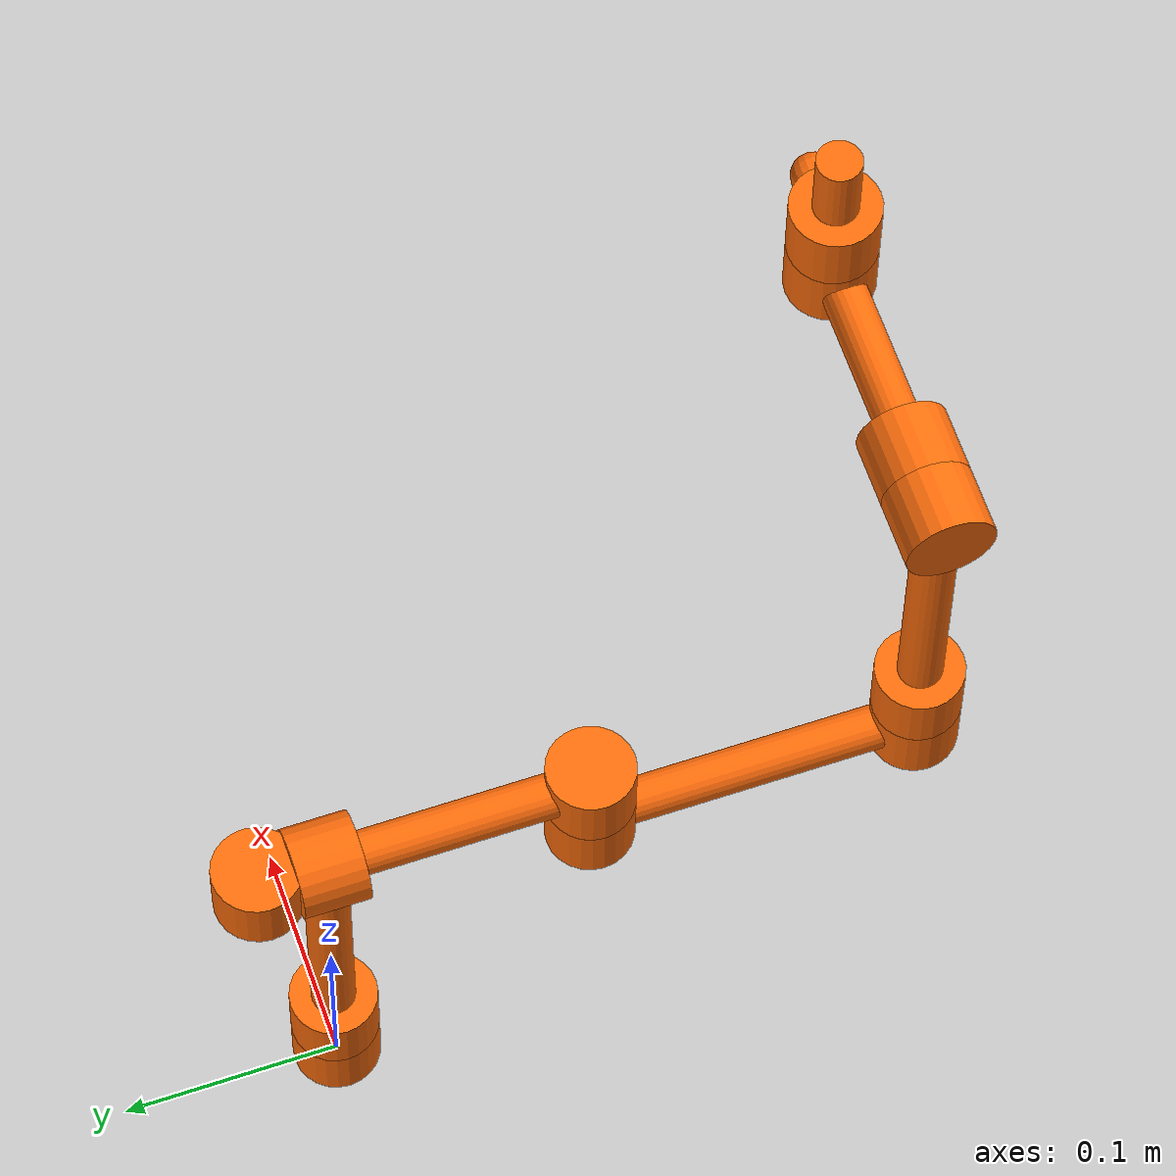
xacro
<?xml version="1.0"?>
<robot name="robot" xmlns:xacro="http://ros.org/wiki/xacro">

        <!-- joint properties -->
        <xacro:property name="joint_radius" value="0.02" />
        <xacro:property name="joint_length" value="0.03" />

        <!-- link properties -->
        <xacro:property name="link_radius" value="0.01" />
        <xacro:property name="link1_length" value="0.15" />
        <xacro:property name="link2_length" value="0.15" />
        <xacro:property name="link3_length" value="0.15" />
        <xacro:property name="link4_length" value="0.15" />
        <xacro:property name="link5_length" value="0.10" />
        <xacro:property name="link6_length" value="0.05" />

        <xacro:property name="inertia_radius" value="0.05" />
        <xacro:property name="inertia_length" value="0.3" />
        <xacro:property name="link_mass" value="1.0" />

        <!-- colors -->
        <material name="Orange">
                <color rgba="1.0 0.423529411765 0.0392156862745 1.0"/>
        </material>

        <!--    Macro Source: https://github.com/ros-industrial/universal_robot/
                Author: Ludovic Delval
                Contributor: Felix Messmer      -->
        <xacro:macro name="cylinder_inertial" params="radius length mass *origin">
                <inertial>
                        <mass value="${mass}" />
                        <xacro:insert_block name="origin" />
                        <inertia ixx="${0.0833333 * mass * (3 * radius * radius + length * length)}" ixy="0.0" ixz="0.0"
                                iyy="${0.0833333 * mass * (3 * radius * radius + length * length)}" iyz="0.0"
                                izz="${0.5 * mass * radius * radius}" />
                </inertial>
        </xacro:macro>

        <!-- Connect to world -->
        <link name="world" />
        <joint name="world_joint" type="fixed">
                <parent link="world" />
                <child link = "base_link" />
                <origin xyz="0.0 0.0 0.0" rpy="0.0 0.0 0.0" />
        </joint>

        <link name="base_link" >
                <visual name="joint">
                        <origin xyz="0 0 ${joint_length / 2.0}" rpy="0 0 0" />
                        <geometry>
                                <cylinder length="${joint_length}" radius="${joint_radius}"/>
                        </geometry>
                        <material name="Orange"/>
                </visual>
                <xacro:cylinder_inertial radius="${inertia_radius}" length="${inertia_length}" mass="${link_mass}">
                        <origin xyz="0 0 0" rpy="0 0 0" />
                </xacro:cylinder_inertial>
        </link>

        <joint name="joint1" type="revolute">
                <parent link="base_link" />
                <child link = "link1" />
                <origin xyz="0.0 0.0 ${3.0 / 2.0 * joint_length}" rpy="0.0 0.0 0.0" />
                <axis xyz="0 0 1" />
                <limit lower="${-2.0 * pi}" upper="${2.0 * pi}" effort="2.0" velocity="10.0"/>
                <dynamics D="1" K="7000" damping="0.003" friction="0.0" mu_coulomb="0" mu_viscous="16" />
        </joint>

        <link name="link1">
                <visual name="joint1">
                        <origin xyz="0 0 0" rpy="0 0 0" />
                        <geometry>
                                <cylinder length="${joint_length}" radius="${joint_radius}"/>
                        </geometry>
                        <material name="Orange"/>
                </visual>
                <visual name="link">
                        <origin xyz="0 0 ${link1_length / 2.0}" rpy="0 0 0" />
                        <geometry>
                                <cylinder length="${link1_length}" radius="${link_radius}"/>
                        </geometry>
                        <material name="Orange"/>
                </visual>
                <visual name="joint2">
                        <origin xyz="0 0 ${link1_length}" rpy="${pi / 2.0} 0 0" />
                        <geometry>
                                <cylinder length="${joint_length}" radius="${joint_radius}"/>
                        </geometry>
                        <material name="Orange"/>
                </visual>
                <xacro:cylinder_inertial radius="${inertia_radius}" length="${inertia_length}" mass="${link_mass}">
                        <origin xyz="0 0 ${link1_length / 2.0}" rpy="0 0 0" />
                </xacro:cylinder_inertial>
        </link>

        <joint name="joint2" type="revolute">
                <parent link="link1" />
                <child link = "link2" />
                <origin xyz="0.0 ${joint_length} ${link1_length}" rpy="${pi / 2.0} 0.0 0.0" />
                <axis xyz="0 1 0" />
                <limit lower="${-2.0 * pi}" upper="${2.0 * pi}" effort="2.0" velocity="10.0"/>
                <dynamics D="1" K="7000" damping="0.003" friction="0.0" mu_coulomb="0" mu_viscous="16" />
        </joint>

        <link name="link2">
                <visual name="joint2">
                        <origin xyz="0 0 0" rpy="${pi / 2.0} 0 0" />
                        <geometry>
                                <cylinder length="${joint_length}" radius="${joint_radius}"/>
                        </geometry>
                        <material name="Orange"/>
                </visual>
                <visual name="link">
                        <origin xyz="0 0 ${link2_length / 2.0}" rpy="0 0 0" />
                        <geometry>
                                <cylinder length="${link2_length}" radius="${link_radius}"/>
                        </geometry>
                        <material name="Orange"/>
                </visual>
                <visual name="joint3">
                        <origin xyz="0 0 ${link2_length}" rpy="${pi / 2.0} 0 0" />
                        <geometry>
                                <cylinder length="${joint_length}" radius="${joint_radius}"/>
                        </geometry>
                        <material name="Orange"/>
                </visual>
                <xacro:cylinder_inertial radius="${inertia_radius}" length="${inertia_length}" mass="${link_mass}">
                        <origin xyz="0 0 ${link2_length / 2.0}" rpy="0 0 0" />
                </xacro:cylinder_inertial>
        </link>

        <joint name="joint3" type="revolute">
                <parent link="link2" />
                <child link = "link3" />
                <origin xyz="0.0 -${joint_length} ${link2_length}" rpy="0.0 0.0 0.0" />
                <axis xyz="0 1 0" />
                <limit lower="${-pi}" upper="${pi}" effort="2.0" velocity="10.0"/>
                <dynamics D="1" K="7000" damping="0.003" friction="0.0" mu_coulomb="0" mu_viscous="16" />
        </joint>

        <link name="link3">
                <visual name="joint3">
                        <origin xyz="0 0 0" rpy="${pi / 2.0} 0 0" />
                        <geometry>
                                <cylinder length="${joint_length}" radius="${joint_radius}"/>
                        </geometry>
                        <material name="Orange"/>
                </visual>
                <visual name="link">
                        <origin xyz="0 0 ${link3_length / 2.0}" rpy="0 0 0" />
                        <geometry>
                                <cylinder length="${link3_length}" radius="${link_radius}"/>
                        </geometry>
                        <material name="Orange"/>
                </visual>
                <visual name="joint4">
                        <origin xyz="0 0 ${link3_length}" rpy="${pi / 2.0} 0 0" />
                        <geometry>
                                <cylinder length="${joint_length}" radius="${joint_radius}"/>
                        </geometry>
                        <material name="Orange"/>
                </visual>
                <xacro:cylinder_inertial radius="${inertia_radius}" length="${inertia_length}" mass="${link_mass}">
                        <origin xyz="0 0 ${link3_length / 2.0}" rpy="0 0 0" />
                </xacro:cylinder_inertial>
        </link>

        <joint name="joint4" type="revolute">
                <parent link="link3" />
                <child link = "link4" />
                <origin xyz="0.0 ${joint_length} ${link3_length}" rpy="0.0 ${pi / 2.0} 0.0" />
                <axis xyz="0 1 0" />
                <limit lower="${-2.0 * pi}" upper="${2.0 * pi}" effort="2.0" velocity="10.0"/>
                <dynamics D="1" K="7000" damping="0.003" friction="0.0" mu_coulomb="0" mu_viscous="16" />
        </joint>

        <link name="link4">
                <visual name="joint4">
                        <origin xyz="0 0 0" rpy="${pi / 2.0} 0 0" />
                        <geometry>
                                <cylinder length="${joint_length}" radius="${joint_radius}"/>
                        </geometry>
                        <material name="Orange"/>
                </visual>
                <visual name="link">
                        <origin xyz="0 ${link4_length / 2.0} 0" rpy="${pi / 2.0} 0 0" />
                        <geometry>
                                <cylinder length="${link4_length}" radius="${link_radius}"/>
                        </geometry>
                        <material name="Orange"/>
                </visual>
                <visual name="joint5">
                        <origin xyz="0 ${link4_length} 0" rpy="0 0 0" />
                        <geometry>
                                <cylinder length="${joint_length}" radius="${joint_radius}"/>
                        </geometry>
                        <material name="Orange"/>
                </visual>
                <xacro:cylinder_inertial radius="${inertia_radius}" length="${0.5 * inertia_length}" mass="${link_mass}">
                        <origin xyz="0 ${link4_length / 2.0} 0" rpy="${pi / 2.0} 0 0" />
                </xacro:cylinder_inertial>
        </link>

        <joint name="joint5" type="revolute">
                <parent link="link4" />
                <child link = "link5" />
                <origin xyz="0.0 ${link4_length} ${joint_length}" rpy="0.0 0.0 0.0" />
                <axis xyz="0 0 1" />
                <limit lower="${-2.0 * pi}" upper="${2.0 * pi}" effort="2.0" velocity="10.0"/>
                <dynamics D="1" K="7000" damping="0.003" friction="0.0" mu_coulomb="0" mu_viscous="16" />
        </joint>

        <link name="link5">
                <visual name="joint5">
                        <origin xyz="0 0 0" rpy="0 0 0" />
                        <geometry>
                                <cylinder length="${joint_length}" radius="${joint_radius}"/>
                        </geometry>
                        <material name="Orange"/>
                </visual>
                <visual name="link">
                        <origin xyz="0 0 ${link5_length / 2.0}" rpy="0 0 0" />
                        <geometry>
                                <cylinder length="${link5_length}" radius="${link_radius}"/>
                        </geometry>
                        <material name="Orange"/>
                </visual>
                <visual name="joint6">
                        <origin xyz="0 0 ${link5_length}" rpy="${pi / 2.0} 0 0" />
                        <geometry>
                                <cylinder length="${joint_length}" radius="${joint_radius}"/>
                        </geometry>
                        <material name="Orange"/>
                </visual>
                <xacro:cylinder_inertial radius="${inertia_radius}" length="${link5_length / 2.0}" mass="${link_mass}">
                        <origin xyz="0 0 ${link5_length / 2.0}" rpy="${pi / 2.0} 0 0" />
                </xacro:cylinder_inertial>
        </link>

        <joint name="joint6" type="revolute">
                <parent link="link5" />
                <child link = "link6" />
                <origin xyz="0.0 ${joint_length} ${link5_length}" rpy="0.0 0.0 0.0" />
                <axis xyz="0 1 0" />
                <limit lower="${-2.0 * pi}" upper="${2.0 * pi}" effort="2.0" velocity="10.0"/>
                <dynamics D="1" K="7000" damping="0.003" friction="0.0" mu_coulomb="0" mu_viscous="16" />
        </joint>

        <link name="link6">
                <visual name="joint6">
                        <origin xyz="0 0 0" rpy="${pi / 2.0} 0 0" />
                        <geometry>
                                <cylinder length="${joint_length}" radius="${joint_radius}"/>
                        </geometry>
                        <material name="Orange"/>
                </visual>
                <visual name="link">
                        <origin xyz="0 ${link6_length / 2.0} 0" rpy="${-pi / 2.0} 0 0" />
                        <geometry>
                                <cylinder length="${link6_length}" radius="${link_radius}"/>
                        </geometry>
                        <material name="Orange"/>
                </visual>
                <xacro:cylinder_inertial radius="${inertia_radius}" length="${link6_length / 2.0}" mass="${link_mass}">
                        <origin xyz="0 ${link6_length / 2.0} 0" rpy="${pi / 2.0} 0 0" />
                </xacro:cylinder_inertial>
        </link>

        <!-- The default end-effector -->
        <joint name="tool0_joint" type="fixed">
                <origin xyz="0 0 ${link6_length / 2.0}" rpy="0 0 0"/>
                <parent link="link6"/>
                <child link="tool0"/>
        </joint>
        <link name="tool0">
                <visual>
                        <origin xyz="0 0 0" rpy="0 0 0" />
                        <geometry>
                                <sphere radius="${link_radius}"/>
                        </geometry>
                        <material name="Orange"/>
                </visual>
        </link>

        <!-- Transmission and motors -->
        <transmission name="joint1_trans">
                <type>transmission_interface/SimpleTransmission</type>
                <joint name="joint1">
                        <hardwareInterface>hardware_interface/EffortJointInterface</hardwareInterface>
                </joint>
                <actuator name="joint1_motor">
                        <mechanicalReduction>1</mechanicalReduction>
                </actuator>
        </transmission>

        <transmission name="joint2_trans">
                <type>transmission_interface/SimpleTransmission</type>
                <joint name="joint2">
                        <hardwareInterface>hardware_interface/EffortJointInterface</hardwareInterface>
                </joint>
                <actuator name="joint2_motor">
                        <mechanicalReduction>1</mechanicalReduction>
                </actuator>
        </transmission>

        <transmission name="joint3_trans">
                <type>transmission_interface/SimpleTransmission</type>
                <joint name="joint3">
                        <hardwareInterface>hardware_interface/EffortJointInterface</hardwareInterface>
                </joint>
                <actuator name="joint3_motor">
                        <mechanicalReduction>1</mechanicalReduction>
                </actuator>
        </transmission>

        <transmission name="joint4_trans">
                <type>transmission_interface/SimpleTransmission</type>
                <joint name="joint4">
                        <hardwareInterface>hardware_interface/EffortJointInterface</hardwareInterface>
                </joint>
                <actuator name="joint4_motor">
                        <mechanicalReduction>1</mechanicalReduction>
                </actuator>
        </transmission>

        <transmission name="joint5_trans">
                <type>transmission_interface/SimpleTransmission</type>
                <joint name="joint5">
                        <hardwareInterface>hardware_interface/EffortJointInterface</hardwareInterface>
                </joint>
                <actuator name="joint5_motor">
                        <mechanicalReduction>1</mechanicalReduction>
                </actuator>
        </transmission>

        <transmission name="joint6_trans">
                <type>transmission_interface/SimpleTransmission</type>
                <joint name="joint6">
                        <hardwareInterface>hardware_interface/EffortJointInterface</hardwareInterface>
                </joint>
                <actuator name="joint6_motor">
                        <mechanicalReduction>1</mechanicalReduction>
                </actuator>
        </transmission>

        <!-- Load Gazebo ROS Control, & Disable gravity -->
        <gazebo>
                <plugin name="gazebo_ros_control" filename="libgazebo_ros_control.so" />
        </gazebo>
        <gazebo reference="link1">
                <turnGravityOff>true</turnGravityOff>
        </gazebo>
        <gazebo reference="link2">
                <turnGravityOff>true</turnGravityOff>
        </gazebo>
        <gazebo reference="link3">
                <turnGravityOff>true</turnGravityOff>
        </gazebo>
        <gazebo reference="link4">
                <turnGravityOff>true</turnGravityOff>
        </gazebo>
        <gazebo reference="link5">
                <turnGravityOff>true</turnGravityOff>
        </gazebo>
        <gazebo reference="link6">
                <turnGravityOff>true</turnGravityOff>
        </gazebo>
</robot>
